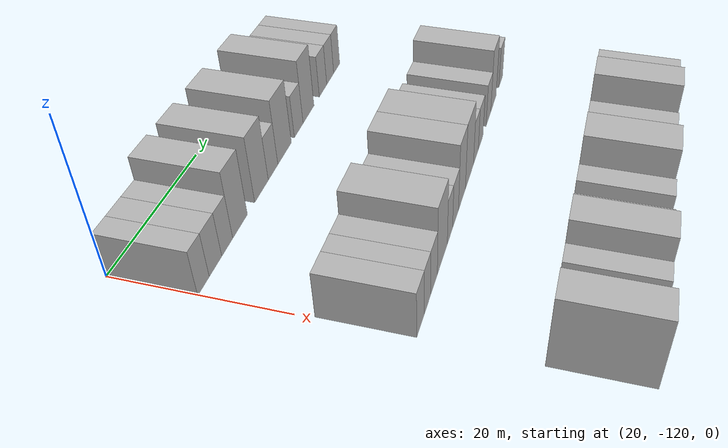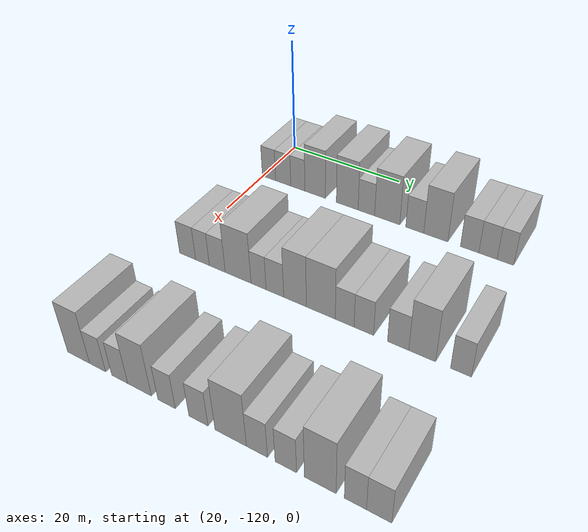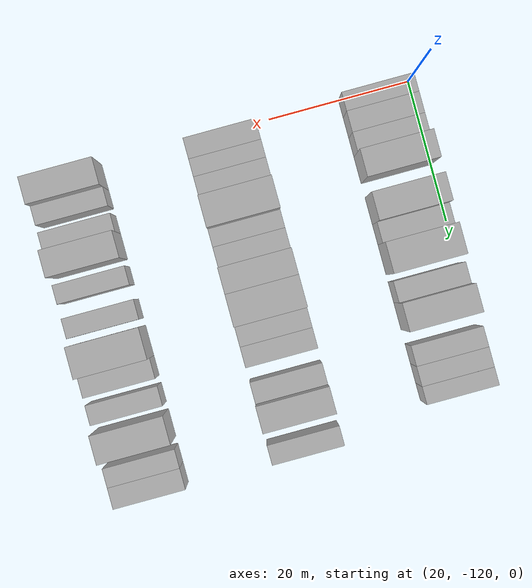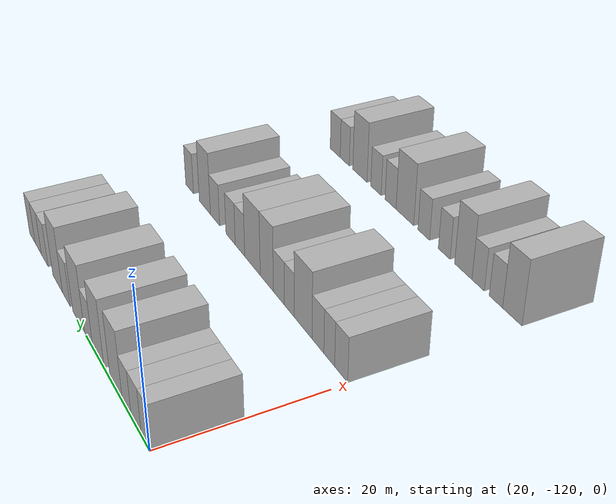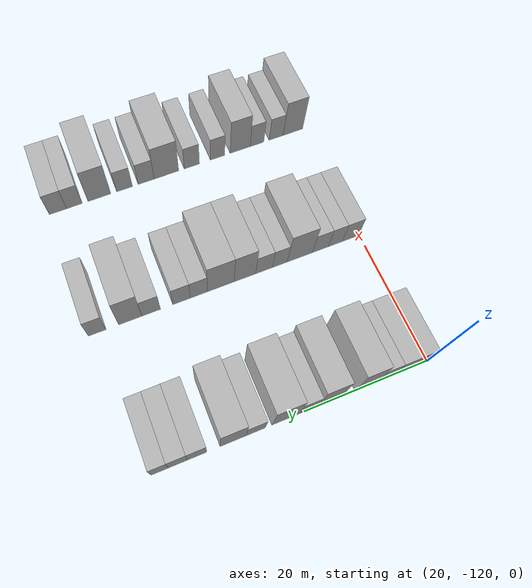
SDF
<sdf version="1.6">
 <world name="default">
  <model name="building_57">
   <static>1</static>
   <pose>25.0000 -118.8301 0 0.000000 0.000000 0.000000</pose>
   <link name="link">
    <pose>0 0 3.00 0 0 0</pose>
    <collision name="collision"><geometry><box><size>10.0000 2.5911 6.0000</size></box></geometry></collision>
    <visual name="visual">
     <cast_shadows>0</cast_shadows>
     <geometry><box><size>10.0000 2.5911 6.0000</size></box></geometry>
     <material>
      <script>
       <uri>model://HANNAS_wall/materials/scripts</uri>
       <uri>model://HANNAS_wall/materials/textures</uri>
       <name>vrc/HANNAS_wall</name>
      </script>
     </material>
    </visual>
   </link>
  </model>
  <model name="building_58">
   <static>1</static>
   <pose>25.0000 -116.0676 0 0.000000 0.000000 0.000000</pose>
   <link name="link">
    <pose>0 0 3.00 0 0 0</pose>
    <collision name="collision"><geometry><box><size>10.0000 2.9338 6.0000</size></box></geometry></collision>
    <visual name="visual">
     <cast_shadows>0</cast_shadows>
     <geometry><box><size>10.0000 2.9338 6.0000</size></box></geometry>
     <material>
      <script>
       <uri>model://HANNAS_wall/materials/scripts</uri>
       <uri>model://HANNAS_wall/materials/textures</uri>
       <name>vrc/HANNAS_wall</name>
      </script>
     </material>
    </visual>
   </link>
  </model>
  <model name="building_59">
   <static>1</static>
   <pose>25.0000 -113.2527 0 0.000000 0.000000 0.000000</pose>
   <link name="link">
    <pose>0 0 3.00 0 0 0</pose>
    <collision name="collision"><geometry><box><size>10.0000 2.6960 6.0000</size></box></geometry></collision>
    <visual name="visual">
     <cast_shadows>0</cast_shadows>
     <geometry><box><size>10.0000 2.6960 6.0000</size></box></geometry>
     <material>
      <script>
       <uri>model://HANNAS_wall/materials/scripts</uri>
       <uri>model://HANNAS_wall/materials/textures</uri>
       <name>vrc/HANNAS_wall</name>
      </script>
     </material>
    </visual>
   </link>
  </model>
  <model name="building_60">
   <static>1</static>
   <pose>25.0000 -109.9994 0 0.000000 0.000000 0.000000</pose>
   <link name="link">
    <pose>0 0 4.50 0 0 0</pose>
    <collision name="collision"><geometry><box><size>10.0000 3.8105 9.0000</size></box></geometry></collision>
    <visual name="visual">
     <cast_shadows>0</cast_shadows>
     <geometry><box><size>10.0000 3.8105 9.0000</size></box></geometry>
     <material>
      <script>
       <uri>model://HANNAS_wall/materials/scripts</uri>
       <uri>model://HANNAS_wall/materials/textures</uri>
       <name>vrc/HANNAS_wall</name>
      </script>
     </material>
    </visual>
   </link>
  </model>
  <model name="building_61">
   <static>1</static>
   <pose>25.0000 -104.1493 0 0.000000 0.000000 0.000000</pose>
   <link name="link">
    <pose>0 0 4.50 0 0 0</pose>
    <collision name="collision"><geometry><box><size>10.0000 3.8898 9.0000</size></box></geometry></collision>
    <visual name="visual">
     <cast_shadows>0</cast_shadows>
     <geometry><box><size>10.0000 3.8898 9.0000</size></box></geometry>
     <material>
      <script>
       <uri>model://HANNAS_wall/materials/scripts</uri>
       <uri>model://HANNAS_wall/materials/textures</uri>
       <name>vrc/HANNAS_wall</name>
      </script>
     </material>
    </visual>
   </link>
  </model>
  <model name="building_62">
   <static>1</static>
   <pose>25.0000 -100.7538 0 0.000000 0.000000 0.000000</pose>
   <link name="link">
    <pose>0 0 3.00 0 0 0</pose>
    <collision name="collision"><geometry><box><size>10.0000 2.9012 6.0000</size></box></geometry></collision>
    <visual name="visual">
     <cast_shadows>0</cast_shadows>
     <geometry><box><size>10.0000 2.9012 6.0000</size></box></geometry>
     <material>
      <script>
       <uri>model://HANNAS_wall/materials/scripts</uri>
       <uri>model://HANNAS_wall/materials/textures</uri>
       <name>vrc/HANNAS_wall</name>
      </script>
     </material>
    </visual>
   </link>
  </model>
  <model name="building_63">
   <static>1</static>
   <pose>25.0000 -97.1521 0 0.000000 0.000000 0.000000</pose>
   <link name="link">
    <pose>0 0 4.50 0 0 0</pose>
    <collision name="collision"><geometry><box><size>10.0000 4.3023 9.0000</size></box></geometry></collision>
    <visual name="visual">
     <cast_shadows>0</cast_shadows>
     <geometry><box><size>10.0000 4.3023 9.0000</size></box></geometry>
     <material>
      <script>
       <uri>model://HANNAS_wall/materials/scripts</uri>
       <uri>model://HANNAS_wall/materials/textures</uri>
       <name>vrc/HANNAS_wall</name>
      </script>
     </material>
    </visual>
   </link>
  </model>
  <model name="building_64">
   <static>1</static>
   <pose>25.0000 -92.5149 0 0.000000 0.000000 0.000000</pose>
   <link name="link">
    <pose>0 0 3.00 0 0 0</pose>
    <collision name="collision"><geometry><box><size>10.0000 2.9720 6.0000</size></box></geometry></collision>
    <visual name="visual">
     <cast_shadows>0</cast_shadows>
     <geometry><box><size>10.0000 2.9720 6.0000</size></box></geometry>
     <material>
      <script>
       <uri>model://HANNAS_wall/materials/scripts</uri>
       <uri>model://HANNAS_wall/materials/textures</uri>
       <name>vrc/HANNAS_wall</name>
      </script>
     </material>
    </visual>
   </link>
  </model>
  <model name="building_65">
   <static>1</static>
   <pose>25.0000 -89.0761 0 0.000000 0.000000 0.000000</pose>
   <link name="link">
    <pose>0 0 4.50 0 0 0</pose>
    <collision name="collision"><geometry><box><size>10.0000 3.9056 9.0000</size></box></geometry></collision>
    <visual name="visual">
     <cast_shadows>0</cast_shadows>
     <geometry><box><size>10.0000 3.9056 9.0000</size></box></geometry>
     <material>
      <script>
       <uri>model://HANNAS_wall/materials/scripts</uri>
       <uri>model://HANNAS_wall/materials/textures</uri>
       <name>vrc/HANNAS_wall</name>
      </script>
     </material>
    </visual>
   </link>
  </model>
  <model name="building_66">
   <static>1</static>
   <pose>25.0000 -83.6893 0 0.000000 0.000000 0.000000</pose>
   <link name="link">
    <pose>0 0 3.00 0 0 0</pose>
    <collision name="collision"><geometry><box><size>10.0000 2.8680 6.0000</size></box></geometry></collision>
    <visual name="visual">
     <cast_shadows>0</cast_shadows>
     <geometry><box><size>10.0000 2.8680 6.0000</size></box></geometry>
     <material>
      <script>
       <uri>model://HANNAS_wall/materials/scripts</uri>
       <uri>model://HANNAS_wall/materials/textures</uri>
       <name>vrc/HANNAS_wall</name>
      </script>
     </material>
    </visual>
   </link>
  </model>
  <model name="building_67">
   <static>1</static>
   <pose>25.0000 -80.8635 0 0.000000 0.000000 0.000000</pose>
   <link name="link">
    <pose>0 0 3.00 0 0 0</pose>
    <collision name="collision"><geometry><box><size>10.0000 2.7835 6.0000</size></box></geometry></collision>
    <visual name="visual">
     <cast_shadows>0</cast_shadows>
     <geometry><box><size>10.0000 2.7835 6.0000</size></box></geometry>
     <material>
      <script>
       <uri>model://HANNAS_wall/materials/scripts</uri>
       <uri>model://HANNAS_wall/materials/textures</uri>
       <name>vrc/HANNAS_wall</name>
      </script>
     </material>
    </visual>
   </link>
  </model>
  <model name="building_68">
   <static>1</static>
   <pose>25.0000 -78.2213 0 0.000000 0.000000 0.000000</pose>
   <link name="link">
    <pose>0 0 3.00 0 0 0</pose>
    <collision name="collision"><geometry><box><size>10.0000 2.5008 6.0000</size></box></geometry></collision>
    <visual name="visual">
     <cast_shadows>0</cast_shadows>
     <geometry><box><size>10.0000 2.5008 6.0000</size></box></geometry>
     <material>
      <script>
       <uri>model://HANNAS_wall/materials/scripts</uri>
       <uri>model://HANNAS_wall/materials/textures</uri>
       <name>vrc/HANNAS_wall</name>
      </script>
     </material>
    </visual>
   </link>
  </model>
  <model name="building_249">
   <static>1</static>
   <pose>47.0000 -118.3741 0 0.000000 0.000000 0.000000</pose>
   <link name="link">
    <pose>0 0 3.00 0 0 0</pose>
    <collision name="collision"><geometry><box><size>10.0000 2.8987 6.0000</size></box></geometry></collision>
    <visual name="visual">
     <cast_shadows>0</cast_shadows>
     <geometry><box><size>10.0000 2.8987 6.0000</size></box></geometry>
     <material>
      <script>
       <uri>model://HANNAS_wall/materials/scripts</uri>
       <uri>model://HANNAS_wall/materials/textures</uri>
       <name>vrc/HANNAS_wall</name>
      </script>
     </material>
    </visual>
   </link>
  </model>
  <model name="building_250">
   <static>1</static>
   <pose>47.0000 -115.6920 0 0.000000 0.000000 0.000000</pose>
   <link name="link">
    <pose>0 0 3.00 0 0 0</pose>
    <collision name="collision"><geometry><box><size>10.0000 2.4655 6.0000</size></box></geometry></collision>
    <visual name="visual">
     <cast_shadows>0</cast_shadows>
     <geometry><box><size>10.0000 2.4655 6.0000</size></box></geometry>
     <material>
      <script>
       <uri>model://HANNAS_wall/materials/scripts</uri>
       <uri>model://HANNAS_wall/materials/textures</uri>
       <name>vrc/HANNAS_wall</name>
      </script>
     </material>
    </visual>
   </link>
  </model>
  <model name="building_251">
   <static>1</static>
   <pose>47.0000 -113.0631 0 0.000000 0.000000 0.000000</pose>
   <link name="link">
    <pose>0 0 3.00 0 0 0</pose>
    <collision name="collision"><geometry><box><size>10.0000 2.7924 6.0000</size></box></geometry></collision>
    <visual name="visual">
     <cast_shadows>0</cast_shadows>
     <geometry><box><size>10.0000 2.7924 6.0000</size></box></geometry>
     <material>
      <script>
       <uri>model://HANNAS_wall/materials/scripts</uri>
       <uri>model://HANNAS_wall/materials/textures</uri>
       <name>vrc/HANNAS_wall</name>
      </script>
     </material>
    </visual>
   </link>
  </model>
  <model name="building_252">
   <static>1</static>
   <pose>47.0000 -109.4588 0 0.000000 0.000000 0.000000</pose>
   <link name="link">
    <pose>0 0 4.50 0 0 0</pose>
    <collision name="collision"><geometry><box><size>10.0000 4.4162 9.0000</size></box></geometry></collision>
    <visual name="visual">
     <cast_shadows>0</cast_shadows>
     <geometry><box><size>10.0000 4.4162 9.0000</size></box></geometry>
     <material>
      <script>
       <uri>model://HANNAS_wall/materials/scripts</uri>
       <uri>model://HANNAS_wall/materials/textures</uri>
       <name>vrc/HANNAS_wall</name>
      </script>
     </material>
    </visual>
   </link>
  </model>
  <model name="building_253">
   <static>1</static>
   <pose>47.0000 -105.9920 0 0.000000 0.000000 0.000000</pose>
   <link name="link">
    <pose>0 0 3.00 0 0 0</pose>
    <collision name="collision"><geometry><box><size>10.0000 2.5172 6.0000</size></box></geometry></collision>
    <visual name="visual">
     <cast_shadows>0</cast_shadows>
     <geometry><box><size>10.0000 2.5172 6.0000</size></box></geometry>
     <material>
      <script>
       <uri>model://HANNAS_wall/materials/scripts</uri>
       <uri>model://HANNAS_wall/materials/textures</uri>
       <name>vrc/HANNAS_wall</name>
      </script>
     </material>
    </visual>
   </link>
  </model>
  <model name="building_254">
   <static>1</static>
   <pose>47.0000 -103.2946 0 0.000000 0.000000 0.000000</pose>
   <link name="link">
    <pose>0 0 3.00 0 0 0</pose>
    <collision name="collision"><geometry><box><size>10.0000 2.8776 6.0000</size></box></geometry></collision>
    <visual name="visual">
     <cast_shadows>0</cast_shadows>
     <geometry><box><size>10.0000 2.8776 6.0000</size></box></geometry>
     <material>
      <script>
       <uri>model://HANNAS_wall/materials/scripts</uri>
       <uri>model://HANNAS_wall/materials/textures</uri>
       <name>vrc/HANNAS_wall</name>
      </script>
     </material>
    </visual>
   </link>
  </model>
  <model name="building_255">
   <static>1</static>
   <pose>47.0000 -100.0454 0 0.000000 0.000000 0.000000</pose>
   <link name="link">
    <pose>0 0 4.50 0 0 0</pose>
    <collision name="collision"><geometry><box><size>10.0000 3.6208 9.0000</size></box></geometry></collision>
    <visual name="visual">
     <cast_shadows>0</cast_shadows>
     <geometry><box><size>10.0000 3.6208 9.0000</size></box></geometry>
     <material>
      <script>
       <uri>model://HANNAS_wall/materials/scripts</uri>
       <uri>model://HANNAS_wall/materials/textures</uri>
       <name>vrc/HANNAS_wall</name>
      </script>
     </material>
    </visual>
   </link>
  </model>
  <model name="building_256">
   <static>1</static>
   <pose>47.0000 -96.0049 0 0.000000 0.000000 0.000000</pose>
   <link name="link">
    <pose>0 0 4.50 0 0 0</pose>
    <collision name="collision"><geometry><box><size>10.0000 4.4601 9.0000</size></box></geometry></collision>
    <visual name="visual">
     <cast_shadows>0</cast_shadows>
     <geometry><box><size>10.0000 4.4601 9.0000</size></box></geometry>
     <material>
      <script>
       <uri>model://HANNAS_wall/materials/scripts</uri>
       <uri>model://HANNAS_wall/materials/textures</uri>
       <name>vrc/HANNAS_wall</name>
      </script>
     </material>
    </visual>
   </link>
  </model>
  <model name="building_257">
   <static>1</static>
   <pose>47.0000 -92.3596 0 0.000000 0.000000 0.000000</pose>
   <link name="link">
    <pose>0 0 3.00 0 0 0</pose>
    <collision name="collision"><geometry><box><size>10.0000 2.8306 6.0000</size></box></geometry></collision>
    <visual name="visual">
     <cast_shadows>0</cast_shadows>
     <geometry><box><size>10.0000 2.8306 6.0000</size></box></geometry>
     <material>
      <script>
       <uri>model://HANNAS_wall/materials/scripts</uri>
       <uri>model://HANNAS_wall/materials/textures</uri>
       <name>vrc/HANNAS_wall</name>
      </script>
     </material>
    </visual>
   </link>
  </model>
  <model name="building_258">
   <static>1</static>
   <pose>47.0000 -89.5088 0 0.000000 0.000000 0.000000</pose>
   <link name="link">
    <pose>0 0 3.00 0 0 0</pose>
    <collision name="collision"><geometry><box><size>10.0000 2.8710 6.0000</size></box></geometry></collision>
    <visual name="visual">
     <cast_shadows>0</cast_shadows>
     <geometry><box><size>10.0000 2.8710 6.0000</size></box></geometry>
     <material>
      <script>
       <uri>model://HANNAS_wall/materials/scripts</uri>
       <uri>model://HANNAS_wall/materials/textures</uri>
       <name>vrc/HANNAS_wall</name>
      </script>
     </material>
    </visual>
   </link>
  </model>
  <model name="building_259">
   <static>1</static>
   <pose>47.0000 -84.5749 0 0.000000 0.000000 0.000000</pose>
   <link name="link">
    <pose>0 0 3.00 0 0 0</pose>
    <collision name="collision"><geometry><box><size>10.0000 2.9968 6.0000</size></box></geometry></collision>
    <visual name="visual">
     <cast_shadows>0</cast_shadows>
     <geometry><box><size>10.0000 2.9968 6.0000</size></box></geometry>
     <material>
      <script>
       <uri>model://HANNAS_wall/materials/scripts</uri>
       <uri>model://HANNAS_wall/materials/textures</uri>
       <name>vrc/HANNAS_wall</name>
      </script>
     </material>
    </visual>
   </link>
  </model>
  <model name="building_260">
   <static>1</static>
   <pose>47.0000 -81.2248 0 0.000000 0.000000 0.000000</pose>
   <link name="link">
    <pose>0 0 4.50 0 0 0</pose>
    <collision name="collision"><geometry><box><size>10.0000 3.7034 9.0000</size></box></geometry></collision>
    <visual name="visual">
     <cast_shadows>0</cast_shadows>
     <geometry><box><size>10.0000 3.7034 9.0000</size></box></geometry>
     <material>
      <script>
       <uri>model://HANNAS_wall/materials/scripts</uri>
       <uri>model://HANNAS_wall/materials/textures</uri>
       <name>vrc/HANNAS_wall</name>
      </script>
     </material>
    </visual>
   </link>
  </model>
  <model name="building_261">
   <static>1</static>
   <pose>47.0000 -75.9961 0 0.000000 0.000000 0.000000</pose>
   <link name="link">
    <pose>0 0 3.00 0 0 0</pose>
    <collision name="collision"><geometry><box><size>10.0000 2.7541 6.0000</size></box></geometry></collision>
    <visual name="visual">
     <cast_shadows>0</cast_shadows>
     <geometry><box><size>10.0000 2.7541 6.0000</size></box></geometry>
     <material>
      <script>
       <uri>model://HANNAS_wall/materials/scripts</uri>
       <uri>model://HANNAS_wall/materials/textures</uri>
       <name>vrc/HANNAS_wall</name>
      </script>
     </material>
    </visual>
   </link>
  </model>
  <model name="building_439">
   <static>1</static>
   <pose>69.0000 -118.2815 0 0.000000 0.000000 0.000000</pose>
   <link name="link">
    <pose>0 0 4.50 0 0 0</pose>
    <collision name="collision"><geometry><box><size>10.0000 3.7280 9.0000</size></box></geometry></collision>
    <visual name="visual">
     <cast_shadows>0</cast_shadows>
     <geometry><box><size>10.0000 3.7280 9.0000</size></box></geometry>
     <material>
      <script>
       <uri>model://HANNAS_wall/materials/scripts</uri>
       <uri>model://HANNAS_wall/materials/textures</uri>
       <name>vrc/HANNAS_wall</name>
      </script>
     </material>
    </visual>
   </link>
  </model>
  <model name="building_440">
   <static>1</static>
   <pose>69.0000 -115.0906 0 0.000000 0.000000 0.000000</pose>
   <link name="link">
    <pose>0 0 3.00 0 0 0</pose>
    <collision name="collision"><geometry><box><size>10.0000 2.6538 6.0000</size></box></geometry></collision>
    <visual name="visual">
     <cast_shadows>0</cast_shadows>
     <geometry><box><size>10.0000 2.6538 6.0000</size></box></geometry>
     <material>
      <script>
       <uri>model://HANNAS_wall/materials/scripts</uri>
       <uri>model://HANNAS_wall/materials/textures</uri>
       <name>vrc/HANNAS_wall</name>
      </script>
     </material>
    </visual>
   </link>
  </model>
  <model name="building_441">
   <static>1</static>
   <pose>69.0000 -111.4883 0 0.000000 0.000000 0.000000</pose>
   <link name="link">
    <pose>0 0 3.00 0 0 0</pose>
    <collision name="collision"><geometry><box><size>10.0000 2.5507 6.0000</size></box></geometry></collision>
    <visual name="visual">
     <cast_shadows>0</cast_shadows>
     <geometry><box><size>10.0000 2.5507 6.0000</size></box></geometry>
     <material>
      <script>
       <uri>model://HANNAS_wall/materials/scripts</uri>
       <uri>model://HANNAS_wall/materials/textures</uri>
       <name>vrc/HANNAS_wall</name>
      </script>
     </material>
    </visual>
   </link>
  </model>
  <model name="building_442">
   <static>1</static>
   <pose>69.0000 -108.3526 0 0.000000 0.000000 0.000000</pose>
   <link name="link">
    <pose>0 0 4.50 0 0 0</pose>
    <collision name="collision"><geometry><box><size>10.0000 3.7207 9.0000</size></box></geometry></collision>
    <visual name="visual">
     <cast_shadows>0</cast_shadows>
     <geometry><box><size>10.0000 3.7207 9.0000</size></box></geometry>
     <material>
      <script>
       <uri>model://HANNAS_wall/materials/scripts</uri>
       <uri>model://HANNAS_wall/materials/textures</uri>
       <name>vrc/HANNAS_wall</name>
      </script>
     </material>
    </visual>
   </link>
  </model>
  <model name="building_443">
   <static>1</static>
   <pose>69.0000 -104.1744 0 0.000000 0.000000 0.000000</pose>
   <link name="link">
    <pose>0 0 3.00 0 0 0</pose>
    <collision name="collision"><geometry><box><size>10.0000 2.6358 6.0000</size></box></geometry></collision>
    <visual name="visual">
     <cast_shadows>0</cast_shadows>
     <geometry><box><size>10.0000 2.6358 6.0000</size></box></geometry>
     <material>
      <script>
       <uri>model://HANNAS_wall/materials/scripts</uri>
       <uri>model://HANNAS_wall/materials/textures</uri>
       <name>vrc/HANNAS_wall</name>
      </script>
     </material>
    </visual>
   </link>
  </model>
  <model name="building_444">
   <static>1</static>
   <pose>69.0000 -99.4746 0 0.000000 0.000000 0.000000</pose>
   <link name="link">
    <pose>0 0 3.00 0 0 0</pose>
    <collision name="collision"><geometry><box><size>10.0000 2.7636 6.0000</size></box></geometry></collision>
    <visual name="visual">
     <cast_shadows>0</cast_shadows>
     <geometry><box><size>10.0000 2.7636 6.0000</size></box></geometry>
     <material>
      <script>
       <uri>model://HANNAS_wall/materials/scripts</uri>
       <uri>model://HANNAS_wall/materials/textures</uri>
       <name>vrc/HANNAS_wall</name>
      </script>
     </material>
    </visual>
   </link>
  </model>
  <model name="building_445">
   <static>1</static>
   <pose>69.0000 -94.9070 0 0.000000 0.000000 0.000000</pose>
   <link name="link">
    <pose>0 0 4.50 0 0 0</pose>
    <collision name="collision"><geometry><box><size>10.0000 4.3717 9.0000</size></box></geometry></collision>
    <visual name="visual">
     <cast_shadows>0</cast_shadows>
     <geometry><box><size>10.0000 4.3717 9.0000</size></box></geometry>
     <material>
      <script>
       <uri>model://HANNAS_wall/materials/scripts</uri>
       <uri>model://HANNAS_wall/materials/textures</uri>
       <name>vrc/HANNAS_wall</name>
      </script>
     </material>
    </visual>
   </link>
  </model>
  <model name="building_446">
   <static>1</static>
   <pose>69.0000 -91.3014 0 0.000000 0.000000 0.000000</pose>
   <link name="link">
    <pose>0 0 3.00 0 0 0</pose>
    <collision name="collision"><geometry><box><size>10.0000 2.8394 6.0000</size></box></geometry></collision>
    <visual name="visual">
     <cast_shadows>0</cast_shadows>
     <geometry><box><size>10.0000 2.8394 6.0000</size></box></geometry>
     <material>
      <script>
       <uri>model://HANNAS_wall/materials/scripts</uri>
       <uri>model://HANNAS_wall/materials/textures</uri>
       <name>vrc/HANNAS_wall</name>
      </script>
     </material>
    </visual>
   </link>
  </model>
  <model name="building_447">
   <static>1</static>
   <pose>69.0000 -87.4918 0 0.000000 0.000000 0.000000</pose>
   <link name="link">
    <pose>0 0 3.00 0 0 0</pose>
    <collision name="collision"><geometry><box><size>10.0000 2.7798 6.0000</size></box></geometry></collision>
    <visual name="visual">
     <cast_shadows>0</cast_shadows>
     <geometry><box><size>10.0000 2.7798 6.0000</size></box></geometry>
     <material>
      <script>
       <uri>model://HANNAS_wall/materials/scripts</uri>
       <uri>model://HANNAS_wall/materials/textures</uri>
       <name>vrc/HANNAS_wall</name>
      </script>
     </material>
    </visual>
   </link>
  </model>
  <model name="building_448">
   <static>1</static>
   <pose>69.0000 -83.1272 0 0.000000 0.000000 0.000000</pose>
   <link name="link">
    <pose>0 0 4.50 0 0 0</pose>
    <collision name="collision"><geometry><box><size>10.0000 3.9493 9.0000</size></box></geometry></collision>
    <visual name="visual">
     <cast_shadows>0</cast_shadows>
     <geometry><box><size>10.0000 3.9493 9.0000</size></box></geometry>
     <material>
      <script>
       <uri>model://HANNAS_wall/materials/scripts</uri>
       <uri>model://HANNAS_wall/materials/textures</uri>
       <name>vrc/HANNAS_wall</name>
      </script>
     </material>
    </visual>
   </link>
  </model>
  <model name="building_449">
   <static>1</static>
   <pose>69.0000 -78.8314 0 0.000000 0.000000 0.000000</pose>
   <link name="link">
    <pose>0 0 3.00 0 0 0</pose>
    <collision name="collision"><geometry><box><size>10.0000 2.6423 6.0000</size></box></geometry></collision>
    <visual name="visual">
     <cast_shadows>0</cast_shadows>
     <geometry><box><size>10.0000 2.6423 6.0000</size></box></geometry>
     <material>
      <script>
       <uri>model://HANNAS_wall/materials/scripts</uri>
       <uri>model://HANNAS_wall/materials/textures</uri>
       <name>vrc/HANNAS_wall</name>
      </script>
     </material>
    </visual>
   </link>
  </model>
  <model name="building_450">
   <static>1</static>
   <pose>69.0000 -76.0344 0 0.000000 0.000000 0.000000</pose>
   <link name="link">
    <pose>0 0 3.00 0 0 0</pose>
    <collision name="collision"><geometry><box><size>10.0000 2.9517 6.0000</size></box></geometry></collision>
    <visual name="visual">
     <cast_shadows>0</cast_shadows>
     <geometry><box><size>10.0000 2.9517 6.0000</size></box></geometry>
     <material>
      <script>
       <uri>model://HANNAS_wall/materials/scripts</uri>
       <uri>model://HANNAS_wall/materials/textures</uri>
       <name>vrc/HANNAS_wall</name>
      </script>
     </material>
    </visual>
   </link>
  </model>
 </world>
</sdf>
